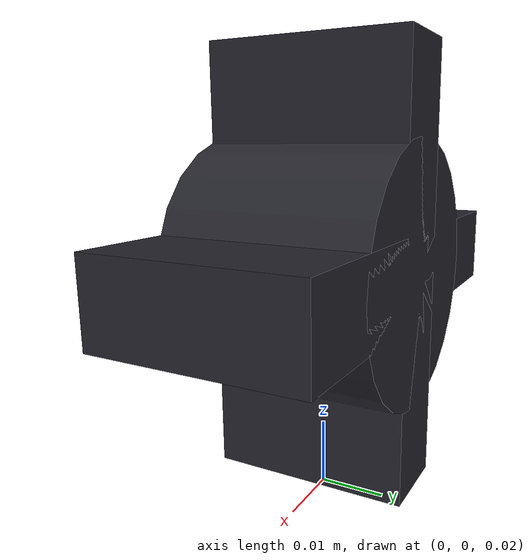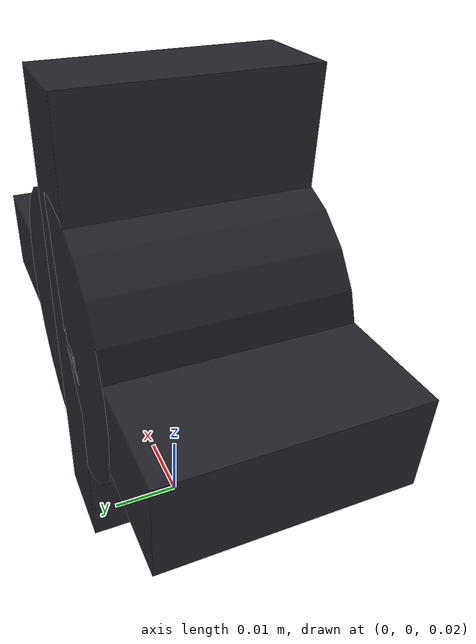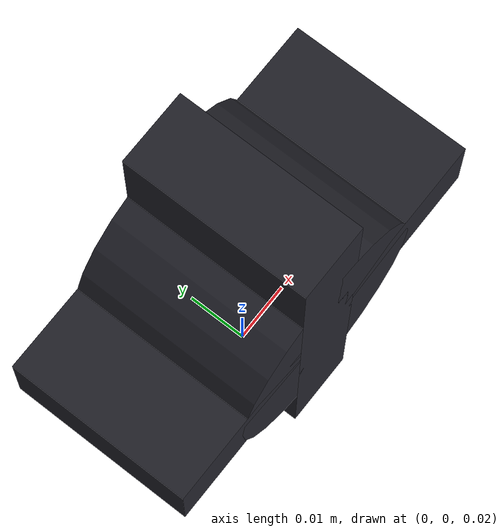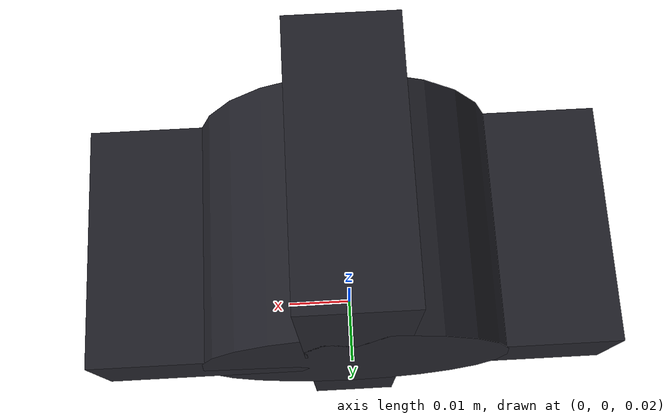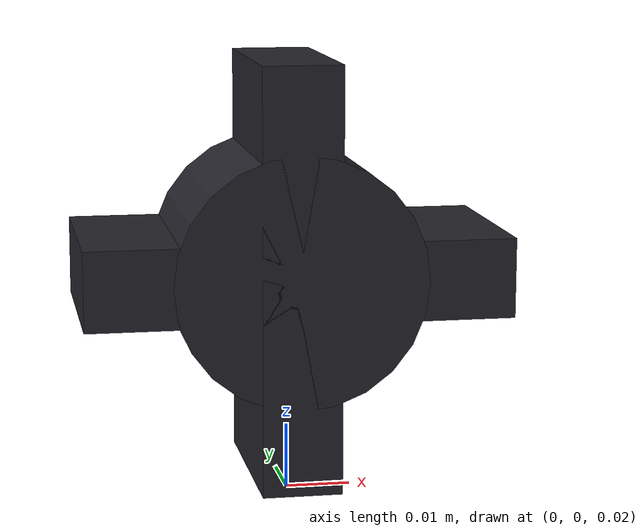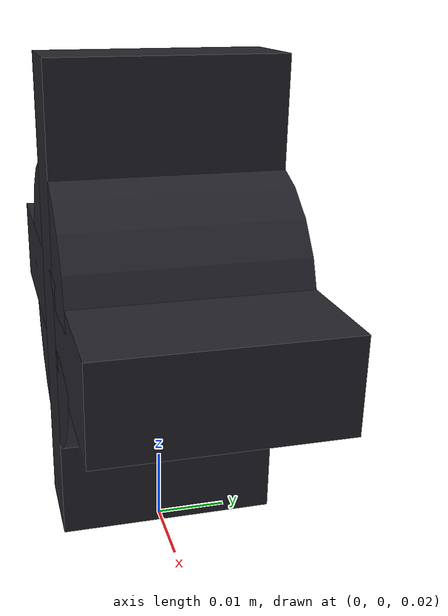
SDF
<?xml version="1.0"?>
<sdf version="1.10">
  <model name="separator_star_disc">
    <static>false</static>
    <self_collide>false</self_collide>
    <link name="base">
      <inertial><mass>1.0</mass><inertia><ixx>0.01</ixx><ixy>0</ixy><ixz>0</ixz><iyy>0.01</iyy><iyz>0</iyz><izz>0.01</izz></inertia></inertial>
    </link>
    <link name="rotor">
      <inertial>
        <pose>0 0 0.055 0 0 0</pose>
        <mass>0.25</mass>
        <inertia><ixx>0.00009</ixx><ixy>0</ixy><ixz>0</ixz><iyy>0.00008</iyy><iyz>0</iyz><izz>0.00009</izz></inertia>
      </inertial>
      <collision name="disc_collision">
        <pose>0 0 0.055 1.570796327 0 0</pose>
        <max_contacts>6</max_contacts>
        <geometry><cylinder><radius>0.025</radius><length>0.030</length></cylinder></geometry>
        <surface><friction><ode><mu>1.10</mu><mu2>0.85</mu2><fdir1>1 0 0</fdir1></ode></friction></surface>
      </collision>
      <visual name="hub">
        <pose>0 0 0.055 1.570796327 0 0</pose>
        <geometry><cylinder><radius>0.019</radius><length>0.030</length></cylinder></geometry>
        <material><ambient>0.08 0.08 0.10 1</ambient><diffuse>0.14 0.14 0.17 1</diffuse><specular>0.35 0.35 0.35 1</specular></material>
      </visual>
      <visual name="tooth_a">
        <pose>0 0 0.055 0 0 0</pose>
        <geometry><box><size>0.064 0.030 0.012</size></box></geometry>
        <material><ambient>0.08 0.08 0.10 1</ambient><diffuse>0.14 0.14 0.17 1</diffuse><specular>0.35 0.35 0.35 1</specular></material>
      </visual>
      <visual name="tooth_b">
        <pose>0 0 0.055 0 1.570796327 0</pose>
        <geometry><box><size>0.064 0.030 0.012</size></box></geometry>
        <material><ambient>0.08 0.08 0.10 1</ambient><diffuse>0.14 0.14 0.17 1</diffuse><specular>0.35 0.35 0.35 1</specular></material>
      </visual>
    </link>
    <joint name="world_fixed" type="fixed"><parent>world</parent><child>base</child></joint>
    <joint name="shaft_joint" type="revolute">
      <parent>base</parent><child>rotor</child>
      <axis>
        <xyz>0 1 0</xyz>
        <limit><lower>-1e16</lower><upper>1e16</upper><effort>80</effort><velocity>120</velocity></limit>
        <dynamics><damping>0.01</damping><friction>0.0</friction></dynamics>
      </axis>
    </joint>
    <plugin filename="gz-sim-joint-controller-system" name="gz::sim::systems::JointController">
      <joint_name>shaft_joint</joint_name>
      <topic>/singulator/separator/screen/cmd_vel</topic>
      <initial_velocity>80.0</initial_velocity>
    </plugin>
  </model>
</sdf>
